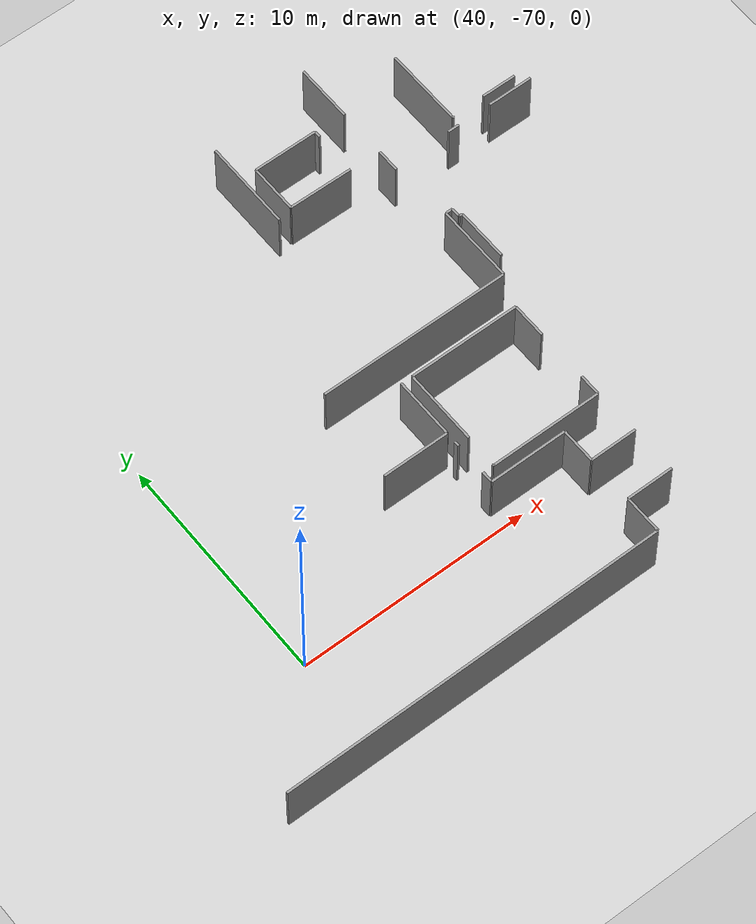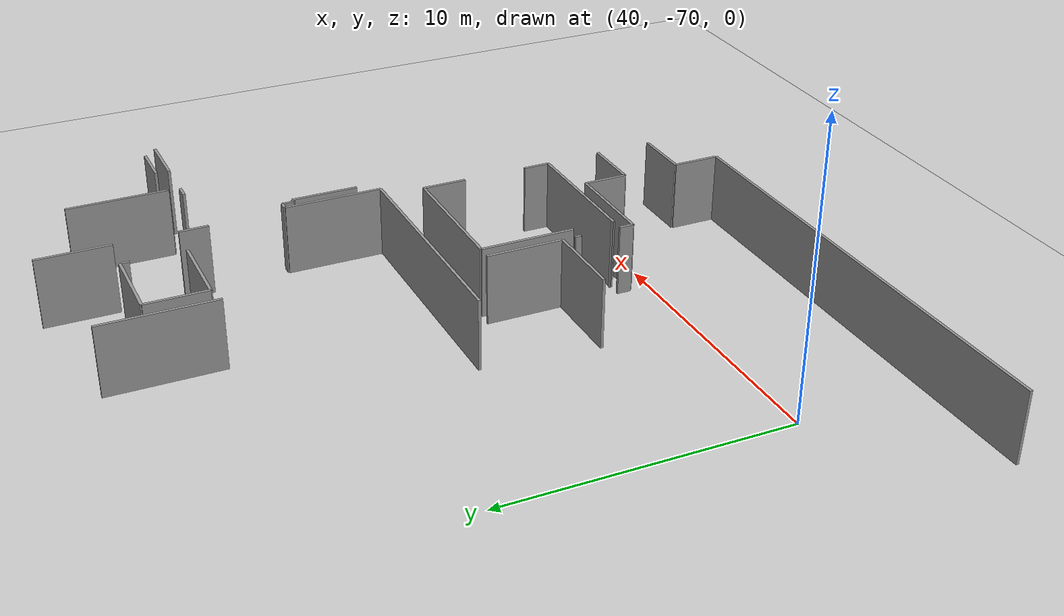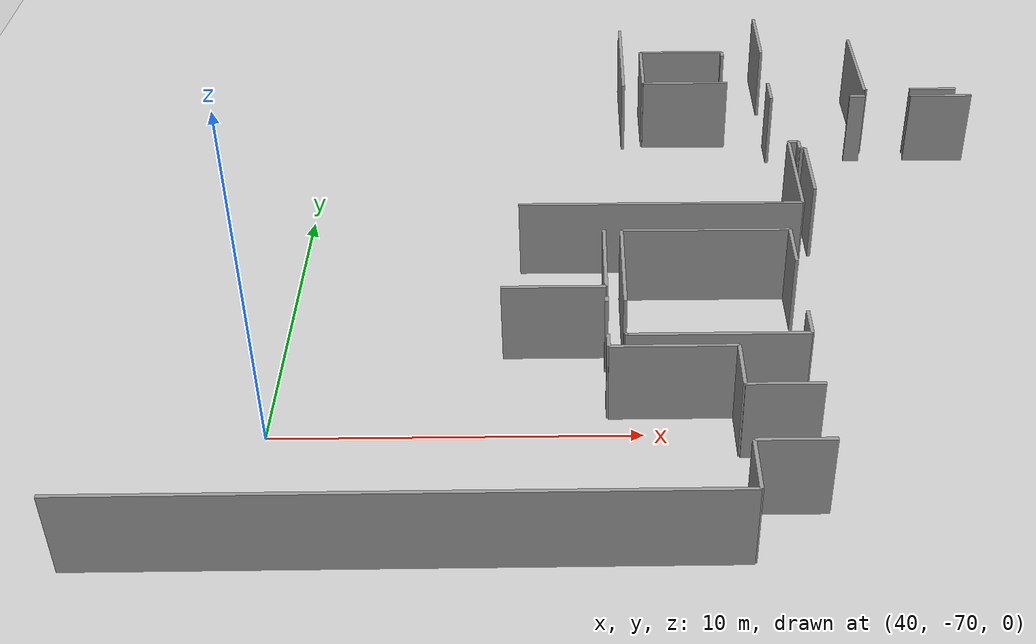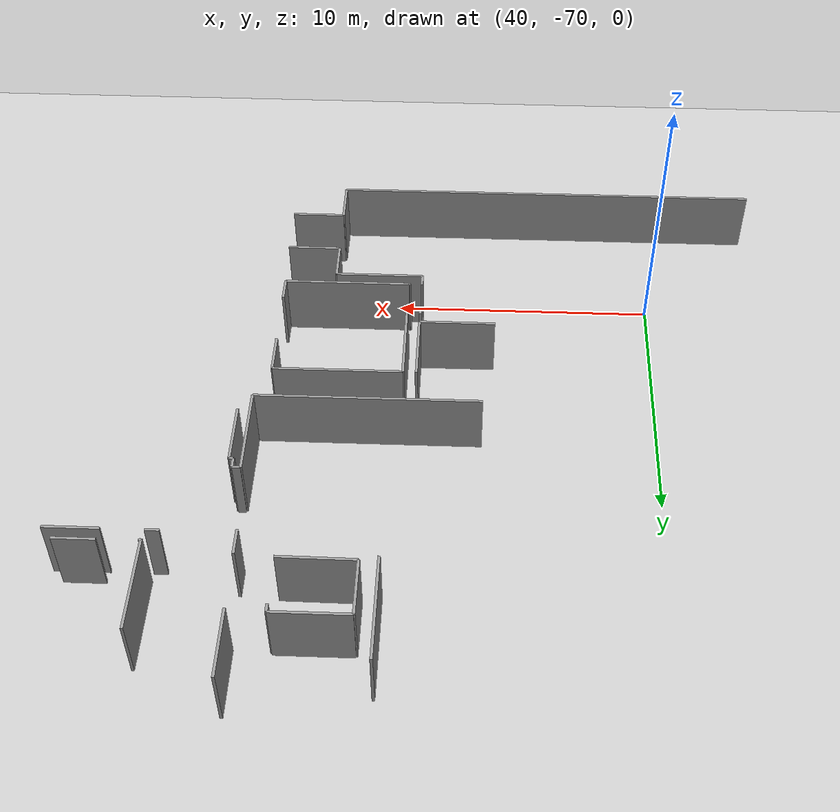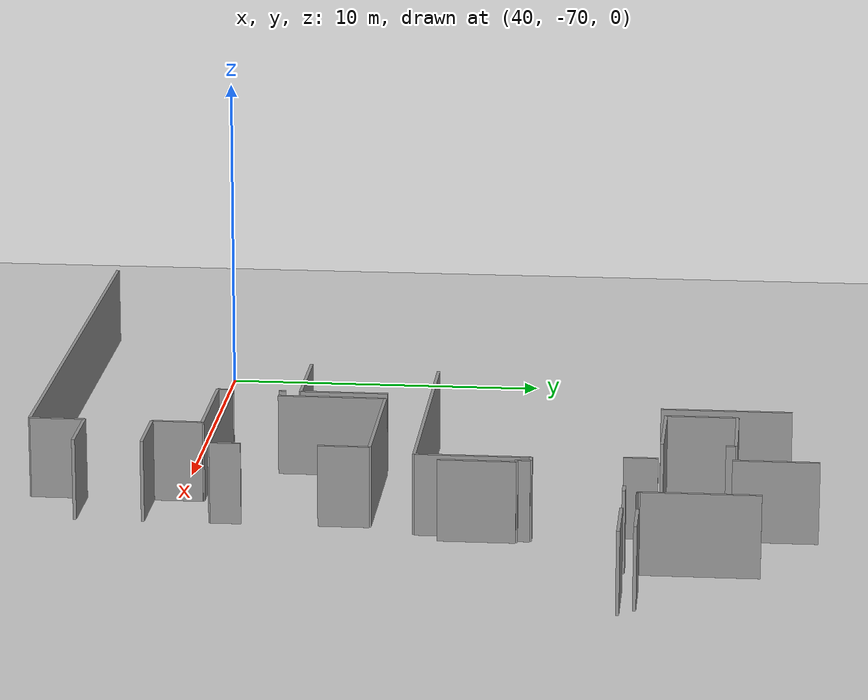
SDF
<sdf version="1.6">
 <world name="default">
  <model name="ground_plane">
   <static>1</static>
   <link name="link">
    <collision name="collision">
     <geometry><plane><normal>0 0 1</normal><size>100 100</size></plane></geometry>
     <surface><friction><ode><mu>100</mu><mu2>50</mu2></ode></friction></surface>
    </collision>
    <visual name="visual">
     <cast_shadows>0</cast_shadows>
     <geometry><plane><normal>0 0 1</normal><size>100 100</size></plane></geometry>
     <material>
      <script><uri>file://media/materials/scripts/gazebo.material</uri><name>Gazebo/Grey</name></script>
     </material>
    </visual>
   </link>
  </model>
  <model name="50023964">
   <static>1</static>
   <link name="Wall_7">
    <collision name="Wall_7_Collision">
     <geometry><box><size>0.219999364898 0.1 2.5</size></box></geometry>
     <pose>0.109999682449 0 1.25 0 0 0</pose>
    </collision>
    <visual name="Wall_7_Visual">
     <pose>0.109999682449 0 1.25 0 0 0</pose>
     <geometry><box><size>0.219999364898 0.1 2.5</size></box></geometry>
     <material>
      <script><uri>file://media/materials/scripts/gazebo.material</uri><name>Gazebo/Grey</name></script>
      <ambient>1 1 1 1</ambient>
     </material>
    </visual>
    <pose>131.319297577 -141.712108221 0 0 0 -1.57079632679</pose>
   </link>
   <link name="Wall_8">
    <collision name="Wall_8_Collision">
     <geometry><box><size>0.496649836461 0.1 2.5</size></box></geometry>
     <pose>0.248324918231 0 1.25 0 0 0</pose>
    </collision>
    <visual name="Wall_8_Visual">
     <pose>0.248324918231 0 1.25 0 0 0</pose>
     <geometry><box><size>0.496649836461 0.1 2.5</size></box></geometry>
     <material>
      <script><uri>file://media/materials/scripts/gazebo.material</uri><name>Gazebo/Grey</name></script>
      <ambient>1 1 1 1</ambient>
     </material>
    </visual>
    <pose>131.319297577 -143.338985742 0 0 0 -1.57079632679</pose>
   </link>
   <link name="Wall_9">
    <collision name="Wall_9_Collision">
     <geometry><box><size>3.40008256327 0.1 2.5</size></box></geometry>
     <pose>1.70004128164 0 1.25 0 0 0</pose>
    </collision>
    <visual name="Wall_9_Visual">
     <pose>1.70004128164 0 1.25 0 0 0</pose>
     <geometry><box><size>3.40008256327 0.1 2.5</size></box></geometry>
     <material>
      <script><uri>file://media/materials/scripts/gazebo.material</uri><name>Gazebo/Grey</name></script>
      <ambient>1 1 1 1</ambient>
     </material>
    </visual>
    <pose>131.319297577 -143.835635578 0 0 0 0.0</pose>
   </link>
   <link name="Wall_10">
    <collision name="Wall_10_Collision">
     <geometry><box><size>1.52907179829 0.1 2.5</size></box></geometry>
     <pose>0.764535899146 0 1.25 0 0 0</pose>
    </collision>
    <visual name="Wall_10_Visual">
     <pose>0.764535899146 0 1.25 0 0 0</pose>
     <geometry><box><size>1.52907179829 0.1 2.5</size></box></geometry>
     <material>
      <script><uri>file://media/materials/scripts/gazebo.material</uri><name>Gazebo/Grey</name></script>
      <ambient>1 1 1 1</ambient>
     </material>
    </visual>
    <pose>134.71938014 -143.835635578 0 0 0 -1.57079632679</pose>
   </link>
   <link name="Wall_11">
    <collision name="Wall_11_Collision">
     <geometry><box><size>2.0541742085 0.1 2.5</size></box></geometry>
     <pose>1.02708710425 0 1.25 0 0 0</pose>
    </collision>
    <visual name="Wall_11_Visual">
     <pose>1.02708710425 0 1.25 0 0 0</pose>
     <geometry><box><size>2.0541742085 0.1 2.5</size></box></geometry>
     <material>
      <script><uri>file://media/materials/scripts/gazebo.material</uri><name>Gazebo/Grey</name></script>
      <ambient>1 1 1 1</ambient>
     </material>
    </visual>
    <pose>134.71938014 -145.364707377 0 0 0 0.0</pose>
   </link>
   <link name="Wall_12">
    <collision name="Wall_12_Collision">
     <geometry><box><size>2.04325045251 0.1 2.5</size></box></geometry>
     <pose>1.02162522626 0 1.25 0 0 0</pose>
    </collision>
    <visual name="Wall_12_Visual">
     <pose>1.02162522626 0 1.25 0 0 0</pose>
     <geometry><box><size>2.04325045251 0.1 2.5</size></box></geometry>
     <material>
      <script><uri>file://media/materials/scripts/gazebo.material</uri><name>Gazebo/Grey</name></script>
      <ambient>1 1 1 1</ambient>
     </material>
    </visual>
    <pose>136.773554349 -147.412784605 0 0 0 3.14159265359</pose>
   </link>
   <link name="Wall_13">
    <collision name="Wall_13_Collision">
     <geometry><box><size>1.65939474771 0.1 2.5</size></box></geometry>
     <pose>0.829697373853 0 1.25 0 0 0</pose>
    </collision>
    <visual name="Wall_13_Visual">
     <pose>0.829697373853 0 1.25 0 0 0</pose>
     <geometry><box><size>1.65939474771 0.1 2.5</size></box></geometry>
     <material>
      <script><uri>file://media/materials/scripts/gazebo.material</uri><name>Gazebo/Grey</name></script>
      <ambient>1 1 1 1</ambient>
     </material>
    </visual>
    <pose>134.730303896 -147.412784605 0 0 0 -1.57079632679</pose>
   </link>
   <link name="Wall_14">
    <collision name="Wall_14_Collision">
     <geometry><box><size>16.7545055405 0.1 2.5</size></box></geometry>
     <pose>8.37725277026 0 1.25 0 0 0</pose>
    </collision>
    <visual name="Wall_14_Visual">
     <pose>8.37725277026 0 1.25 0 0 0</pose>
     <geometry><box><size>16.7545055405 0.1 2.5</size></box></geometry>
     <material>
      <script><uri>file://media/materials/scripts/gazebo.material</uri><name>Gazebo/Grey</name></script>
      <ambient>1 1 1 1</ambient>
     </material>
    </visual>
    <pose>134.730303896 -149.072179353 0 0 0 -3.14088001422</pose>
   </link>
   <link name="Wall_15">
    <collision name="Wall_15_Collision">
     <geometry><box><size>4.92712203487 0.1 2.5</size></box></geometry>
     <pose>2.46356101743 0 1.25 0 0 0</pose>
    </collision>
    <visual name="Wall_15_Visual">
     <pose>2.46356101743 0 1.25 0 0 0</pose>
     <geometry><box><size>4.92712203487 0.1 2.5</size></box></geometry>
     <material>
      <script><uri>file://media/materials/scripts/gazebo.material</uri><name>Gazebo/Grey</name></script>
      <ambient>1 1 1 1</ambient>
     </material>
    </visual>
    <pose>131.763615001 -143.351179702 0 0 0 0.0</pose>
   </link>
   <link name="Wall_16">
    <collision name="Wall_16_Collision">
     <geometry><box><size>0.931821790353 0.1 2.5</size></box></geometry>
     <pose>0.465910895176 0 1.25 0 0 0</pose>
    </collision>
    <visual name="Wall_16_Visual">
     <pose>0.465910895176 0 1.25 0 0 0</pose>
     <geometry><box><size>0.931821790353 0.1 2.5</size></box></geometry>
     <material>
      <script><uri>file://media/materials/scripts/gazebo.material</uri><name>Gazebo/Grey</name></script>
      <ambient>1 1 1 1</ambient>
     </material>
    </visual>
    <pose>136.690737036 -143.351179702 0 0 0 1.57079632679</pose>
   </link>
   <link name="Wall_17">
    <collision name="Wall_17_Collision">
     <geometry><box><size>1.54101171763 0.1 2.5</size></box></geometry>
     <pose>0.770505858817 0 1.25 0 0 0</pose>
    </collision>
    <visual name="Wall_17_Visual">
     <pose>0.770505858817 0 1.25 0 0 0</pose>
     <geometry><box><size>1.54101171763 0.1 2.5</size></box></geometry>
     <material>
      <script><uri>file://media/materials/scripts/gazebo.material</uri><name>Gazebo/Grey</name></script>
      <ambient>1 1 1 1</ambient>
     </material>
    </visual>
    <pose>136.690737036 -140.133244419 0 0 0 1.57079632679</pose>
   </link>
   <link name="Wall_18">
    <collision name="Wall_18_Collision">
     <geometry><box><size>4.86513607062 0.1 2.5</size></box></geometry>
     <pose>2.43256803531 0 1.25 0 0 0</pose>
    </collision>
    <visual name="Wall_18_Visual">
     <pose>2.43256803531 0 1.25 0 0 0</pose>
     <geometry><box><size>4.86513607062 0.1 2.5</size></box></geometry>
     <material>
      <script><uri>file://media/materials/scripts/gazebo.material</uri><name>Gazebo/Grey</name></script>
      <ambient>1 1 1 1</ambient>
     </material>
    </visual>
    <pose>136.690737036 -138.592232701 0 0 0 3.14159265359</pose>
   </link>
   <link name="Wall_19">
    <collision name="Wall_19_Collision">
     <geometry><box><size>3.30481724937 0.1 2.5</size></box></geometry>
     <pose>1.65240862469 0 1.25 0 0 0</pose>
    </collision>
    <visual name="Wall_19_Visual">
     <pose>1.65240862469 0 1.25 0 0 0</pose>
     <geometry><box><size>3.30481724937 0.1 2.5</size></box></geometry>
     <material>
      <script><uri>file://media/materials/scripts/gazebo.material</uri><name>Gazebo/Grey</name></script>
      <ambient>1 1 1 1</ambient>
     </material>
    </visual>
    <pose>131.825600965 -138.592232701 0 0 0 -1.57079632679</pose>
   </link>
   <link name="Wall_20">
    <collision name="Wall_20_Collision">
     <geometry><box><size>0.0741242233267 0.1 2.5</size></box></geometry>
     <pose>0.0370621116633 0 1.25 0 0 0</pose>
    </collision>
    <visual name="Wall_20_Visual">
     <pose>0.0370621116633 0 1.25 0 0 0</pose>
     <geometry><box><size>0.0741242233267 0.1 2.5</size></box></geometry>
     <material>
      <script><uri>file://media/materials/scripts/gazebo.material</uri><name>Gazebo/Grey</name></script>
      <ambient>1 1 1 1</ambient>
     </material>
    </visual>
    <pose>131.825600965 -143.310533168 0 0 0 -2.5611944662</pose>
   </link>
   <link name="Wall_24">
    <collision name="Wall_24_Collision">
     <geometry><box><size>2.69029246451 0.1 2.5</size></box></geometry>
     <pose>1.34514623226 0 1.25 0 0 0</pose>
    </collision>
    <visual name="Wall_24_Visual">
     <pose>1.34514623226 0 1.25 0 0 0</pose>
     <geometry><box><size>2.69029246451 0.1 2.5</size></box></geometry>
     <material>
      <script><uri>file://media/materials/scripts/gazebo.material</uri><name>Gazebo/Grey</name></script>
      <ambient>1 1 1 1</ambient>
     </material>
    </visual>
    <pose>131.322854149 -138.567082659 0 0 0 -1.57079632679</pose>
   </link>
   <link name="Wall_25">
    <collision name="Wall_25_Collision">
     <geometry><box><size>2.89759050028 0.1 2.5</size></box></geometry>
     <pose>1.44879525014 0 1.25 0 0 0</pose>
    </collision>
    <visual name="Wall_25_Visual">
     <pose>1.44879525014 0 1.25 0 0 0</pose>
     <geometry><box><size>2.89759050028 0.1 2.5</size></box></geometry>
     <material>
      <script><uri>file://media/materials/scripts/gazebo.material</uri><name>Gazebo/Grey</name></script>
      <ambient>1 1 1 1</ambient>
     </material>
    </visual>
    <pose>131.322854149 -141.257375123 0 0 0 3.14089126847</pose>
   </link>
   <link name="Wall_26">
    <collision name="Wall_26_Collision">
     <geometry><box><size>2.31786859738 0.1 2.5</size></box></geometry>
     <pose>1.15893429869 0 1.25 0 0 0</pose>
    </collision>
    <visual name="Wall_26_Visual">
     <pose>1.15893429869 0 1.25 0 0 0</pose>
     <geometry><box><size>2.31786859738 0.1 2.5</size></box></geometry>
     <material>
      <script><uri>file://media/materials/scripts/gazebo.material</uri><name>Gazebo/Grey</name></script>
      <ambient>1 1 1 1</ambient>
     </material>
    </visual>
    <pose>137.703597853 -136.502238735 0 0 0 1.57079632679</pose>
   </link>
   <link name="Wall_27">
    <collision name="Wall_27_Collision">
     <geometry><box><size>0.153948747261 0.1 2.5</size></box></geometry>
     <pose>0.0769743736305 0 1.25 0 0 0</pose>
    </collision>
    <visual name="Wall_27_Visual">
     <pose>0.0769743736305 0 1.25 0 0 0</pose>
     <geometry><box><size>0.153948747261 0.1 2.5</size></box></geometry>
     <material>
      <script><uri>file://media/materials/scripts/gazebo.material</uri><name>Gazebo/Grey</name></script>
      <ambient>1 1 1 1</ambient>
     </material>
    </visual>
    <pose>137.703597853 -134.184370137 0 0 0 3.14159265359</pose>
   </link>
   <link name="Wall_28">
    <collision name="Wall_28_Collision">
     <geometry><box><size>0.40417897177 0.1 2.5</size></box></geometry>
     <pose>0.202089485885 0 1.25 0 0 0</pose>
    </collision>
    <visual name="Wall_28_Visual">
     <pose>0.202089485885 0 1.25 0 0 0</pose>
     <geometry><box><size>0.40417897177 0.1 2.5</size></box></geometry>
     <material>
      <script><uri>file://media/materials/scripts/gazebo.material</uri><name>Gazebo/Grey</name></script>
      <ambient>1 1 1 1</ambient>
     </material>
    </visual>
    <pose>137.549649106 -134.184370137 0 0 0 1.57079632679</pose>
   </link>
   <link name="Wall_29">
    <collision name="Wall_29_Collision">
     <geometry><box><size>0.303324759455 0.1 2.5</size></box></geometry>
     <pose>0.151662379728 0 1.25 0 0 0</pose>
    </collision>
    <visual name="Wall_29_Visual">
     <pose>0.151662379728 0 1.25 0 0 0</pose>
     <geometry><box><size>0.303324759455 0.1 2.5</size></box></geometry>
     <material>
      <script><uri>file://media/materials/scripts/gazebo.material</uri><name>Gazebo/Grey</name></script>
      <ambient>1 1 1 1</ambient>
     </material>
    </visual>
    <pose>137.549649106 -133.780191166 0 0 0 3.14159265359</pose>
   </link>
   <link name="Wall_30">
    <collision name="Wall_30_Collision">
     <geometry><box><size>3.43539423962 0.1 2.5</size></box></geometry>
     <pose>1.71769711981 0 1.25 0 0 0</pose>
    </collision>
    <visual name="Wall_30_Visual">
     <pose>1.71769711981 0 1.25 0 0 0</pose>
     <geometry><box><size>3.43539423962 0.1 2.5</size></box></geometry>
     <material>
      <script><uri>file://media/materials/scripts/gazebo.material</uri><name>Gazebo/Grey</name></script>
      <ambient>1 1 1 1</ambient>
     </material>
    </visual>
    <pose>137.246324347 -133.780191166 0 0 0 -1.57079632679</pose>
   </link>
   <link name="Wall_31">
    <collision name="Wall_31_Collision">
     <geometry><box><size>8.41180019688 0.1 2.5</size></box></geometry>
     <pose>4.20590009844 0 1.25 0 0 0</pose>
    </collision>
    <visual name="Wall_31_Visual">
     <pose>4.20590009844 0 1.25 0 0 0</pose>
     <geometry><box><size>8.41180019688 0.1 2.5</size></box></geometry>
     <material>
      <script><uri>file://media/materials/scripts/gazebo.material</uri><name>Gazebo/Grey</name></script>
      <ambient>1 1 1 1</ambient>
     </material>
    </visual>
    <pose>137.246324347 -137.215585405 0 0 0 3.14159265359</pose>
   </link>
   <link name="Wall_34">
    <collision name="Wall_34_Collision">
     <geometry><box><size>1.01616334826 0.1 2.5</size></box></geometry>
     <pose>0.508081674129 0 1.25 0 0 0</pose>
    </collision>
    <visual name="Wall_34_Visual">
     <pose>0.508081674129 0 1.25 0 0 0</pose>
     <geometry><box><size>1.01616334826 0.1 2.5</size></box></geometry>
     <material>
      <script><uri>file://media/materials/scripts/gazebo.material</uri><name>Gazebo/Grey</name></script>
      <ambient>1 1 1 1</ambient>
     </material>
    </visual>
    <pose>137.010320409 -131.085071925 0 0 0 1.57079632679</pose>
   </link>
   <link name="Wall_35">
    <collision name="Wall_35_Collision">
     <geometry><box><size>2.55565082087 0.1 2.5</size></box></geometry>
     <pose>1.27782541043 0 1.25 0 0 0</pose>
    </collision>
    <visual name="Wall_35_Visual">
     <pose>1.27782541043 0 1.25 0 0 0</pose>
     <geometry><box><size>2.55565082087 0.1 2.5</size></box></geometry>
     <material>
      <script><uri>file://media/materials/scripts/gazebo.material</uri><name>Gazebo/Grey</name></script>
      <ambient>1 1 1 1</ambient>
     </material>
    </visual>
    <pose>137.010320409 -127.912355911 0 0 0 1.57079632679</pose>
   </link>
   <link name="Wall_37">
    <collision name="Wall_37_Collision">
     <geometry><box><size>0.509097837477 0.1 2.5</size></box></geometry>
     <pose>0.254548918739 0 1.25 0 0 0</pose>
    </collision>
    <visual name="Wall_37_Visual">
     <pose>0.254548918739 0 1.25 0 0 0</pose>
     <geometry><box><size>0.509097837477 0.1 2.5</size></box></geometry>
     <material>
      <script><uri>file://media/materials/scripts/gazebo.material</uri><name>Gazebo/Grey</name></script>
      <ambient>1 1 1 1</ambient>
     </material>
    </visual>
    <pose>139.617033438 -130.950938363 0 0 0 0.0</pose>
   </link>
   <link name="Wall_38">
    <collision name="Wall_38_Collision">
     <geometry><box><size>2.00997110285 0.1 2.5</size></box></geometry>
     <pose>1.00498555143 0 1.25 0 0 0</pose>
    </collision>
    <visual name="Wall_38_Visual">
     <pose>1.00498555143 0 1.25 0 0 0</pose>
     <geometry><box><size>2.00997110285 0.1 2.5</size></box></geometry>
     <material>
      <script><uri>file://media/materials/scripts/gazebo.material</uri><name>Gazebo/Grey</name></script>
      <ambient>1 1 1 1</ambient>
     </material>
    </visual>
    <pose>141.627512623 -130.950938363 0 0 0 0.0</pose>
   </link>
   <link name="Wall_43">
    <collision name="Wall_43_Collision">
     <geometry><box><size>3.54920453463 0.1 2.5</size></box></geometry>
     <pose>1.77460226731 0 1.25 0 0 0</pose>
    </collision>
    <visual name="Wall_43_Visual">
     <pose>1.77460226731 0 1.25 0 0 0</pose>
     <geometry><box><size>3.54920453463 0.1 2.5</size></box></geometry>
     <material>
      <script><uri>file://media/materials/scripts/gazebo.material</uri><name>Gazebo/Grey</name></script>
      <ambient>1 1 1 1</ambient>
     </material>
    </visual>
    <pose>140.16398336 -130.559461433 0 0 0 1.57079632679</pose>
   </link>
   <link name="Wall_46">
    <collision name="Wall_46_Collision">
     <geometry><box><size>1.52653138992 0.1 2.5</size></box></geometry>
     <pose>0.76326569496 0 1.25 0 0 0</pose>
    </collision>
    <visual name="Wall_46_Visual">
     <pose>0.76326569496 0 1.25 0 0 0</pose>
     <geometry><box><size>1.52653138992 0.1 2.5</size></box></geometry>
     <material>
      <script><uri>file://media/materials/scripts/gazebo.material</uri><name>Gazebo/Grey</name></script>
      <ambient>1 1 1 1</ambient>
     </material>
    </visual>
    <pose>143.20790067 -130.493918897 0 0 0 3.14159265359</pose>
   </link>
   <link name="Wall_47">
    <collision name="Wall_47_Collision">
     <geometry><box><size>0.0928709509964 0.1 2.5</size></box></geometry>
     <pose>0.0464354754982 0 1.25 0 0 0</pose>
    </collision>
    <visual name="Wall_47_Visual">
     <pose>0.0464354754982 0 1.25 0 0 0</pose>
     <geometry><box><size>0.0928709509964 0.1 2.5</size></box></geometry>
     <material>
      <script><uri>file://media/materials/scripts/gazebo.material</uri><name>Gazebo/Grey</name></script>
      <ambient>1 1 1 1</ambient>
     </material>
    </visual>
    <pose>140.229779937 -130.493918897 0 0 0 -2.35812872376</pose>
   </link>
   <link name="Wall_52">
    <collision name="Wall_52_Collision">
     <geometry><box><size>2.15248801245 0.1 2.5</size></box></geometry>
     <pose>1.07624400622 0 1.25 0 0 0</pose>
    </collision>
    <visual name="Wall_52_Visual">
     <pose>1.07624400622 0 1.25 0 0 0</pose>
     <geometry><box><size>2.15248801245 0.1 2.5</size></box></geometry>
     <material>
      <script><uri>file://media/materials/scripts/gazebo.material</uri><name>Gazebo/Grey</name></script>
      <ambient>1 1 1 1</ambient>
     </material>
    </visual>
    <pose>132.841256232 -129.983804897 0 0 0 1.57079632679</pose>
   </link>
   <link name="Wall_53">
    <collision name="Wall_53_Collision">
     <geometry><box><size>2.81146994379 0.1 2.5</size></box></geometry>
     <pose>1.4057349719 0 1.25 0 0 0</pose>
    </collision>
    <visual name="Wall_53_Visual">
     <pose>1.4057349719 0 1.25 0 0 0</pose>
     <geometry><box><size>2.81146994379 0.1 2.5</size></box></geometry>
     <material>
      <script><uri>file://media/materials/scripts/gazebo.material</uri><name>Gazebo/Grey</name></script>
      <ambient>1 1 1 1</ambient>
     </material>
    </visual>
    <pose>132.841256232 -127.831316884 0 0 0 0.0</pose>
   </link>
   <link name="Wall_54">
    <collision name="Wall_54_Collision">
     <geometry><box><size>0.296465656854 0.1 2.5</size></box></geometry>
     <pose>0.148232828427 0 1.25 0 0 0</pose>
    </collision>
    <visual name="Wall_54_Visual">
     <pose>0.148232828427 0 1.25 0 0 0</pose>
     <geometry><box><size>0.296465656854 0.1 2.5</size></box></geometry>
     <material>
      <script><uri>file://media/materials/scripts/gazebo.material</uri><name>Gazebo/Grey</name></script>
      <ambient>1 1 1 1</ambient>
     </material>
    </visual>
    <pose>135.652726176 -127.831316884 0 0 0 -1.57079632679</pose>
   </link>
   <link name="Wall_55">
    <collision name="Wall_55_Collision">
     <geometry><box><size>2.81158702234 0.1 2.5</size></box></geometry>
     <pose>1.40579351117 0 1.25 0 0 0</pose>
    </collision>
    <visual name="Wall_55_Visual">
     <pose>1.40579351117 0 1.25 0 0 0</pose>
     <geometry><box><size>2.81158702234 0.1 2.5</size></box></geometry>
     <material>
      <script><uri>file://media/materials/scripts/gazebo.material</uri><name>Gazebo/Grey</name></script>
      <ambient>1 1 1 1</ambient>
     </material>
    </visual>
    <pose>135.652726176 -130.009463021 0 0 0 3.13246667581</pose>
   </link>
   <link name="Wall_139">
    <collision name="Wall_139_Collision">
     <geometry><box><size>3.97624718173 0.1 2.5</size></box></geometry>
     <pose>1.98812359087 0 1.25 0 0 0</pose>
    </collision>
    <visual name="Wall_139_Visual">
     <pose>1.98812359087 0 1.25 0 0 0</pose>
     <geometry><box><size>3.97624718173 0.1 2.5</size></box></geometry>
     <material>
      <script><uri>file://media/materials/scripts/gazebo.material</uri><name>Gazebo/Grey</name></script>
      <ambient>1 1 1 1</ambient>
     </material>
    </visual>
    <pose>132.171350545 -130.163157728 0 0 0 1.57079632679</pose>
   </link>
   <pose>-82.25 74.5341192722 0 0 0 0</pose>
  </model>
 </world>
</sdf>
